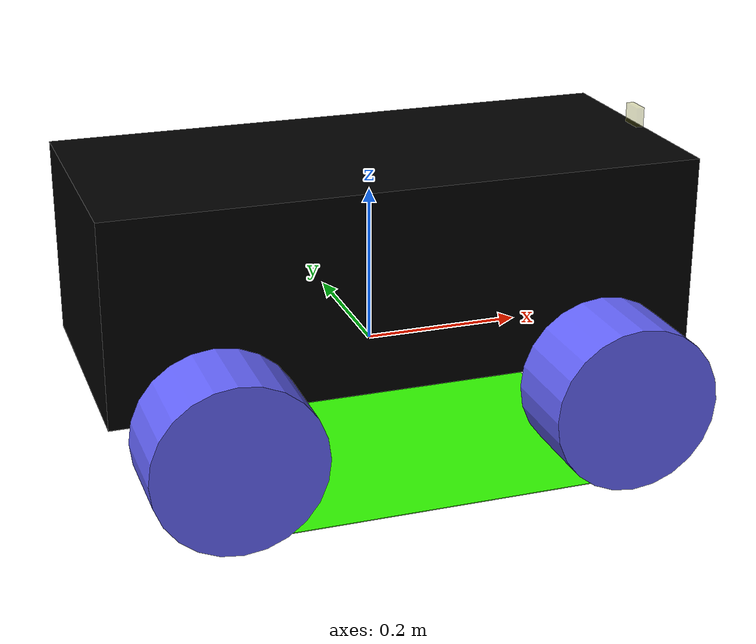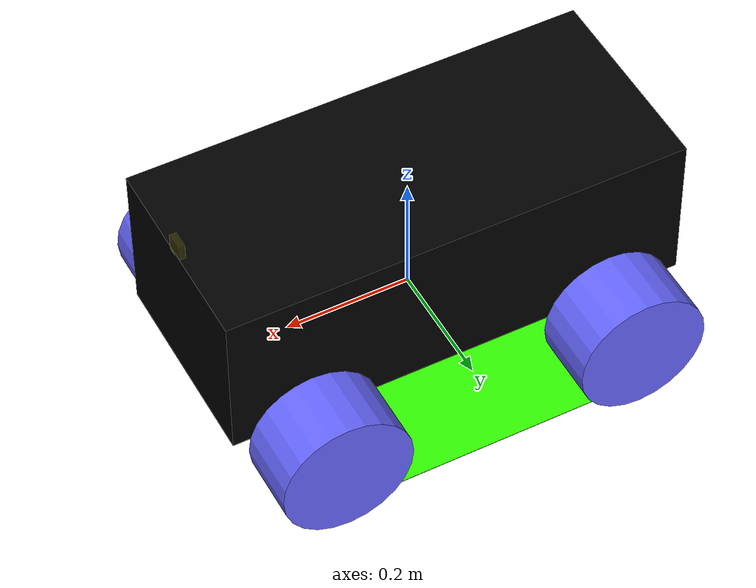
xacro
<?xml version="1.0" encoding="UTF-8" ?>

<robot
  name="xmaxx"
  xmlns:xacro="http://www.ros.org/wiki/xacro">

  <xacro:include filename="$(find robo_magellan)/urdf/_materials.xacro" />
  <xacro:include filename="$(find robo_magellan)/urdf/_macros.xacro" />
  <xacro:include filename="$(find robo_magellan)/urdf/_rc_parts.xacro" />

  <!-- Parameterized robot dimensions -->
  <xacro:property name="wheel_radius" value="0.104" />
  <xacro:property name="wheel_width" value="0.110" />
  <xacro:property name="wheel_base" value="0.485" />
  <xacro:property name="spur_width" value="0.225" />

  <xacro:property name="chassis_width" value="0.325" />
  <xacro:property name="chassis_length" value="0.735" />
  <xacro:property name="chassis_height" value="0.250" />
  <xacro:property name="chassis_clearance" value="0.120" />
  <xacro:property name="chassis_mass" value="5.85" />

  <link name="base_link">
    <visual>
      <origin xyz="0 0 0" rpy="0 0 0" />
      <geometry>
        <box size="${chassis_length} ${chassis_width} 0.001"/>
      </geometry>
      <material name="Black"/>
    </visual>
    <collision>
      <geometry>
        <box size="${chassis_length} ${chassis_width} 0.001"/>
      </geometry>
    </collision>
  </link>

  <link name="chassis">
    <visual>
      <origin xyz="0 0 0" rpy="0 0 0" />
      <geometry>
        <box size="${chassis_length} ${chassis_width} ${chassis_height}"/>
      </geometry>
      <material name="Black"/>
    </visual>
    <collision>
      <geometry>
        <box size="${chassis_length} ${chassis_width} ${chassis_height}"/>
      </geometry>
    </collision>
    <xacro:default_inertial mass="${chassis_mass}"/>
  </link>

  <xacro:wheel prefix="left"  suffix="front" reflect="1" mirror="1"/>
  <xacro:wheel prefix="right" suffix="front" reflect="-1" mirror="1"/>
  <xacro:wheel prefix="left"  suffix="rear"  reflect="1" mirror="-1"/>
  <xacro:wheel prefix="right" suffix="rear"  reflect="-1" mirror="-1"/>

  <link name="camera_link">
    <visual>
      <origin xyz="-0.005 0 0" />
      <geometry>
        <box size="0.01 0.03 0.03" />
      </geometry>
      <material name="Yellow"/>
    </visual>
  </link>

  <joint name="base_to_camera" type="fixed">
    <parent link="base_link" />
    <child link="camera_link" />
    <origin xyz="${chassis_length/2} 0 ${chassis_clearance+chassis_height/2+0.015}" />
  </joint>

  <link name="_base_link">
      <visual>
        <origin xyz="0 0 0" rpy="0 0 0" />
        <geometry>
          <box size="0.5 0.5 0.001" />
        </geometry>
        <material name="LightGreen" />
      </visual>
    <collision>
      <geometry>
          <box size="0.5 0.5 0.001" />
        </geometry>
    </collision>
  </link>

  <joint name="base_joint" type="fixed">
    <parent link="base_link"/>
    <child link="_base_link" />
    <origin xyz="0 0 -${chassis_clearance}"/>
  </joint>

  <joint name="chassis_joint" type="fixed">
    <parent link="base_link"/>
    <child link="chassis" />
    <origin xyz="0 0 ${chassis_height/2}"/>
  </joint>

</robot>

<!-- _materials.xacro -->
<robot
  xmlns:xacro="http://www.ros.org/wiki/xacro"
  >
  <material name="LightBlue">
    <color rgba="0.4 0.4 1.0 1.0" />
  </material>
  <material name="LightGreen">
    <color rgba="0.2 1.0 0.0 1.0" />
  </material>
  <material name="White">
    <color rgba="1.0 1.0 1.0 1.0" />
  </material>
  <material name="Yellow">
    <color rgba="0.5 0.5 0.0 0.3" />
  </material>
  <material name="Gray">
    <color rgba="0.5 0.5 0.5 0.3" />
  </material>
  <material name="Black">
    <color rgba="0.0 0.0 0.0 1.0" />
  </material>
</robot>

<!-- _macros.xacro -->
<robot
  xmlns:xacro="http://www.ros.org/wiki/xacro"
  >
  <xacro:macro name="default_inertial" params="mass">
    <inertial>
      <mass value="${mass}" />
      <inertia ixx="1.0" ixy="0.0" ixz="0.0" iyy="1.0" iyz="0.0" izz="1.0" />
    </inertial>
  </xacro:macro>
</robot>

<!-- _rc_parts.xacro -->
<robot
  xmlns:xacro="http://www.ros.org/wiki/xacro"
  >
  <!--
    Wheel definition.
    Parameters:
    prefix suffix reflect mirror
    Properties:
    wheel_width
    wheel_radius
    wheel_base
    spur_width
    chassis_clearance
   -->
  <xacro:macro name="wheel" params="prefix suffix reflect mirror">
    <link name="${prefix}_${suffix}_wheel_link">
      <visual>
        <origin xyz="0 0 0" rpy="0 ${pi/2} 0" />
        <geometry>
          <cylinder length="${wheel_width}" radius="${wheel_radius}" />
          <!-- mesh filename="package://robo_magellan/urdf/some.stl"/ -->
        </geometry>
        <material name="LightBlue"/>
      </visual>
      <collision>
        <origin xyz="0 0 0" rpy="0 ${pi/2} 0" />
        <geometry>
          <cylinder length="${wheel_width}" radius="${wheel_radius}" />
        </geometry>
      </collision>
    </link>
    <joint name="base_to_${prefix}_${suffix}_wheel" type="fixed">
      <parent link="base_link" />
      <child link="${prefix}_${suffix}_wheel_link" />
      <origin xyz="${wheel_base/2*mirror}  ${spur_width*reflect} ${wheel_radius-chassis_clearance}" rpy="0 0 ${(pi/2)*reflect}" />
    </joint>
  </xacro:macro>

</robot>
